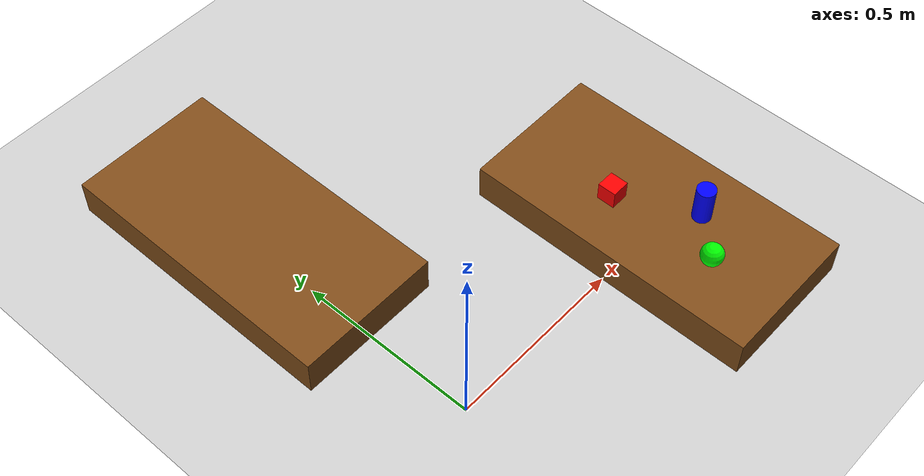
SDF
<?xml version="1.0" ?>
<!--
  empty_world.sdf  –  Gazebo Harmonic (SDF 1.10)
  A clean world with ambient light and a ground plane.
  Physics: ODE at 1 kHz, max_step = 1ms for stable arm simulation.
-->
<sdf version="1.10">
  <world name="arm_world">

    <!-- Physics engine -->
    <physics name="1ms" type="ignored">
      <max_step_size>0.001</max_step_size>
      <real_time_factor>1.0</real_time_factor>
      <real_time_update_rate>1000</real_time_update_rate>
    </physics>

    <!-- Required plugins for Gazebo Harmonic -->
    <plugin filename="gz-sim-physics-system"
            name="gz::sim::systems::Physics"/>
    <plugin filename="gz-sim-user-commands-system"
            name="gz::sim::systems::UserCommands"/>
    <plugin filename="gz-sim-scene-broadcaster-system"
            name="gz::sim::systems::SceneBroadcaster"/>
    <plugin filename="gz-sim-sensors-system"
            name="gz::sim::systems::Sensors">
      <render_engine>ogre2</render_engine>
    </plugin>
    <plugin filename="gz-sim-contact-system"
            name="gz::sim::systems::Contact"/>

    <!-- Lighting -->
    <light name="sun" type="directional">
      <cast_shadows>true</cast_shadows>
      <pose>0 0 10 0 0 0</pose>
      <diffuse>0.8 0.8 0.8 1</diffuse>
      <specular>0.2 0.2 0.2 1</specular>
      <attenuation>
        <range>1000</range>
        <constant>0.9</constant>
        <linear>0.01</linear>
        <quadratic>0.001</quadratic>
      </attenuation>
      <direction>-0.5 0.1 -0.9</direction>
    </light>

    <!-- Ground plane -->
    <model name="ground_plane">
      <static>true</static>
      <link name="link">
        <collision name="collision">
          <geometry>
            <plane>
              <normal>0 0 1</normal>
              <size>100 100</size>
            </plane>
          </geometry>
        </collision>
        <visual name="visual">
          <geometry>
            <plane>
              <normal>0 0 1</normal>
              <size>100 100</size>
            </plane>
          </geometry>
          <material>
            <ambient>0.8 0.8 0.8 1</ambient>
            <diffuse>0.8 0.8 0.8 1</diffuse>
            <specular>0.8 0.8 0.8 1</specular>
          </material>
        </visual>
      </link>
    </model>
    <!-- Table -->
    <model name="table">
      <static>true</static>
      <pose>0.7 0.0 0.05 0 0 0</pose>
      <link name="link">
        <collision name="collision"><geometry><box><size>0.4 0.8 0.1</size></box></geometry></collision>
        <visual name="visual">
          <geometry><box><size>0.4 0.8 0.1</size></box></geometry>
          <material><ambient>0.5 0.3 0.1 1</ambient><diffuse>0.5 0.3 0.1 1</diffuse></material>
        </visual>
      </link>
    </model>

    <!-- Drop-off Table (Left side) -->
    <model name="table_dropoff">
      <static>true</static>
      <pose>0.0 0.7 0.05 0 0 0</pose>
      <link name="link">
        <collision name="collision"><geometry><box><size>0.4 0.8 0.1</size></box></geometry></collision>
        <visual name="visual">
          <geometry><box><size>0.4 0.8 0.1</size></box></geometry>
          <material><ambient>0.5 0.3 0.1 1</ambient><diffuse>0.5 0.3 0.1 1</diffuse></material>
        </visual>
      </link>
    </model>

    <!-- Red Box -->
    <model name="red_box">
      <pose>0.65 0.1 0.125 0 0 0</pose>
      <link name="link">
        <collision name="collision"><geometry><box><size>0.05 0.05 0.05</size></box></geometry></collision>
        <visual name="visual">
          <geometry><box><size>0.05 0.05 0.05</size></box></geometry>
          <material><ambient>1.0 0.0 0.0 1</ambient><diffuse>1.0 0.0 0.0 1</diffuse></material>
        </visual>
      </link>
    </model>

    <!-- Blue Cylinder -->
    <model name="blue_cylinder">
      <pose>0.75 -0.1 0.15 0 0 0</pose>
      <link name="link">
        <collision name="collision"><geometry><cylinder><radius>0.025</radius><length>0.1</length></cylinder></geometry></collision>
        <visual name="visual">
          <geometry><cylinder><radius>0.025</radius><length>0.1</length></cylinder></geometry>
          <material><ambient>0.0 0.0 1.0 1</ambient><diffuse>0.0 0.0 1.0 1</diffuse></material>
        </visual>
      </link>
    </model>

    <!-- Green Sphere -->
    <model name="green_sphere">
      <pose>0.65 -0.2 0.13 0 0 0</pose>
      <link name="link">
        <collision name="collision"><geometry><sphere><radius>0.03</radius></sphere></geometry></collision>
        <visual name="visual">
          <geometry><sphere><radius>0.03</radius></sphere></geometry>
          <material><ambient>0.0 1.0 0.0 1</ambient><diffuse>0.0 1.0 0.0 1</diffuse></material>
        </visual>
      </link>
    </model>

  </world>
</sdf>
